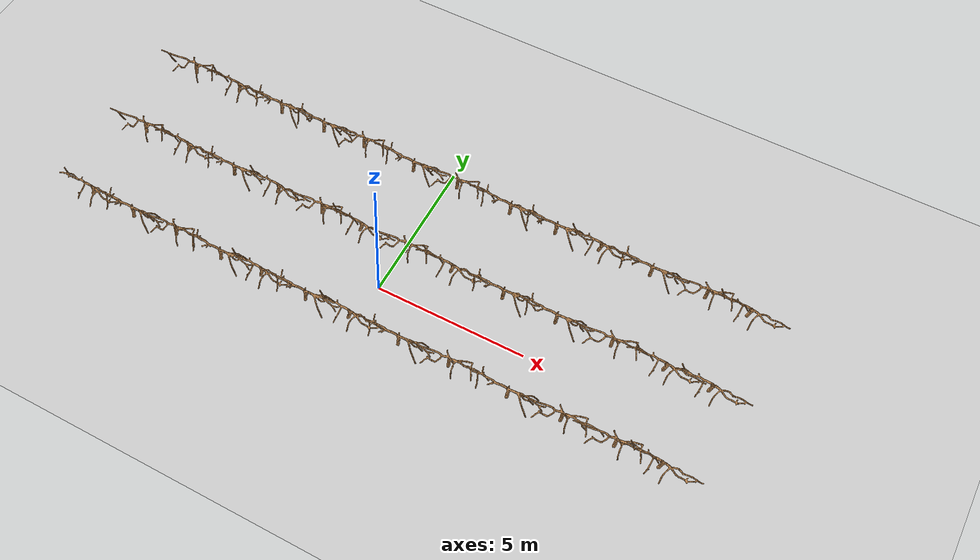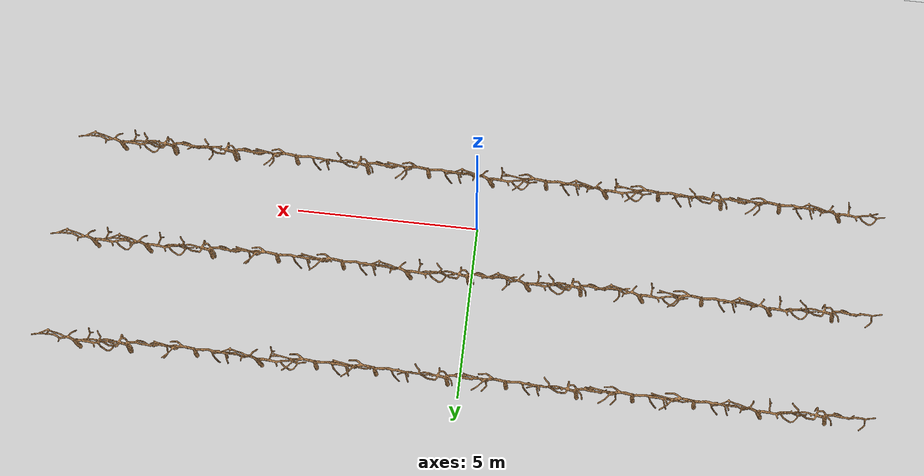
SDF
<sdf version="1.6">
 <world name="default">
  <model name="ground_plane">
   <static>1</static>
   <link name="link">
    <collision name="collision">
     <geometry><plane><normal>0 0 1</normal><size>100 100</size></plane></geometry>
     <surface><friction><ode><mu>100</mu><mu2>50</mu2></ode></friction></surface>
    </collision>
    <visual name="visual">
     <cast_shadows>0</cast_shadows>
     <geometry><plane><normal>0 0 1</normal><size>100 100</size></plane></geometry>
     <material>
      <script><uri>file://media/materials/scripts/gazebo.material</uri><name>Gazebo/Grey</name></script>
     </material>
    </visual>
   </link>
  </model>
  <light name="sun" type="directional">
   <pose>0 0 10 0 -0 0</pose>
   <diffuse>0.8 0.8 0.8 1</diffuse>
   <specular>0.1 0.1 0.1 1</specular>
   <attenuation>
    <range>1000</range>
    <constant>0.9</constant>
    <linear>0.01</linear>
    <quadratic>0.001</quadratic>
   </attenuation>
   <direction>-0.5 0.5 -1</direction>
  </light>
  <physics name="default_physics" default="0" type="ode">
   <ode>
    <solver>
     <type>quick</type>
     <iters>1000</iters>
     <sor>1.3</sor>
     <use_dynamic_moi_rescaling>0</use_dynamic_moi_rescaling>
    </solver>
    <constraints>
     <cfm>0</cfm>
     <erp>0.2</erp>
     <contact_max_correcting_vel>100</contact_max_correcting_vel>
     <contact_surface_layer>0.001</contact_surface_layer>
    </constraints>
   </ode>
   <max_step_size>0.01</max_step_size>
   <real_time_factor>1</real_time_factor>
   <real_time_update_rate>100</real_time_update_rate>
  </physics>
  <gravity>0 0 -9.8</gravity>
  <magnetic_field>6e-06 2.3e-05 -4.2e-05</magnetic_field>
  <atmosphere type="adiabatic"/>
  <scene><ambient>0.4 0.4 0.4 1</ambient><background>0.7 0.7 0.7 1</background><shadows>1</shadows></scene>
  <spherical_coordinates>
   <surface_model>EARTH_WGS84</surface_model>
   <latitude_deg>0</latitude_deg>
   <longitude_deg>0</longitude_deg>
   <elevation>0</elevation>
   <heading_deg>0</heading_deg>
  </spherical_coordinates>
  <audio><device>default</device></audio>
  <model name="vine">
   <static>1</static>
   <link name="link">
    <collision name="collision">
     <geometry>
      <mesh><uri>model://Vine1/meshes/mega_cloud3_processed.stl</uri><scale>1 1 1</scale></mesh>
     </geometry>
     <surface><friction><ode><mu>100</mu><mu2>50</mu2></ode></friction></surface>
    </collision>
    <visual name="visual">
     <geometry>
      <mesh><uri>model://Vine1/meshes/mega_cloud3_processed.stl</uri><scale>1 1 1</scale></mesh>
     </geometry>
     <material>
      <script><uri>file://media/materials/scripts/gazebo.material</uri><name>Gazebo/Wood</name></script>
     </material>
    </visual>
   </link>
   <pose>0 0.5 0 0 -0 1.5708</pose>
  </model>
  <model name="vine_clone">
   <static>1</static>
   <link name="link">
    <collision name="collision">
     <geometry>
      <mesh><uri>model://Vine1/meshes/mega_cloud3_processed.stl</uri><scale>1 1 1</scale></mesh>
     </geometry>
     <surface><friction><ode><mu>100</mu><mu2>50</mu2></ode></friction></surface>
    </collision>
    <visual name="visual">
     <geometry>
      <mesh><uri>model://Vine1/meshes/mega_cloud3_processed.stl</uri><scale>1 1 1</scale></mesh>
     </geometry>
     <material>
      <script><uri>file://media/materials/scripts/gazebo.material</uri><name>Gazebo/Wood</name></script>
     </material>
    </visual>
   </link>
   <pose>-10 0.5 0 0 -0 1.5708</pose>
  </model>
  <model name="vine_0_clone">
   <static>1</static>
   <link name="link">
    <collision name="collision">
     <geometry>
      <mesh><uri>model://Vine3/meshes/mega_cloud7_processed.stl</uri><scale>1 1 1</scale></mesh>
     </geometry>
     <surface><friction><ode><mu>100</mu><mu2>50</mu2></ode></friction></surface>
    </collision>
    <visual name="visual">
     <geometry>
      <mesh><uri>model://Vine3/meshes/mega_cloud7_processed.stl</uri><scale>1 1 1</scale></mesh>
     </geometry>
     <material>
      <script><uri>file://media/materials/scripts/gazebo.material</uri><name>Gazebo/Wood</name></script>
     </material>
    </visual>
   </link>
   <pose>-8.30142 0.5 0 0 -0 1.5708</pose>
  </model>
  <model name="vine_0_clone_0">
   <static>1</static>
   <link name="link">
    <collision name="collision">
     <geometry>
      <mesh><uri>model://Vine3/meshes/mega_cloud7_processed.stl</uri><scale>1 1 1</scale></mesh>
     </geometry>
     <surface><friction><ode><mu>100</mu><mu2>50</mu2></ode></friction></surface>
    </collision>
    <visual name="visual">
     <geometry>
      <mesh><uri>model://Vine3/meshes/mega_cloud7_processed.stl</uri><scale>1 1 1</scale></mesh>
     </geometry>
     <material>
      <script><uri>file://media/materials/scripts/gazebo.material</uri><name>Gazebo/Wood</name></script>
     </material>
    </visual>
   </link>
   <pose>-4.7813 0.5 0 0 -0 1.5708</pose>
  </model>
  <model name="vine_1_clone">
   <static>1</static>
   <link name="link">
    <collision name="collision">
     <geometry>
      <mesh><uri>model://Vine1/meshes/mega_cloud3_processed.stl</uri><scale>1 1 1</scale></mesh>
     </geometry>
     <surface><friction><ode><mu>100</mu><mu2>50</mu2></ode></friction></surface>
    </collision>
    <visual name="visual">
     <geometry>
      <mesh><uri>model://Vine1/meshes/mega_cloud3_processed.stl</uri><scale>1 1 1</scale></mesh>
     </geometry>
     <material>
      <script><uri>file://media/materials/scripts/gazebo.material</uri><name>Gazebo/Wood</name></script>
     </material>
    </visual>
   </link>
   <pose>-3.09224 0.5 0 0 -0 1.5708</pose>
  </model>
  <model name="vine_0_clone_1">
   <static>1</static>
   <link name="link">
    <collision name="collision">
     <geometry>
      <mesh><uri>model://Vine3/meshes/mega_cloud7_processed.stl</uri><scale>1 1 1</scale></mesh>
     </geometry>
     <surface><friction><ode><mu>100</mu><mu2>50</mu2></ode></friction></surface>
    </collision>
    <visual name="visual">
     <geometry>
      <mesh><uri>model://Vine3/meshes/mega_cloud7_processed.stl</uri><scale>1 1 1</scale></mesh>
     </geometry>
     <material>
      <script><uri>file://media/materials/scripts/gazebo.material</uri><name>Gazebo/Wood</name></script>
     </material>
    </visual>
   </link>
   <pose>-1.65994 0.5 0 0 -0 1.5708</pose>
  </model>
  <model name="vine_0_clone_2">
   <static>1</static>
   <link name="link">
    <collision name="collision">
     <geometry>
      <mesh><uri>model://Vine3/meshes/mega_cloud7_processed.stl</uri><scale>1 1 1</scale></mesh>
     </geometry>
     <surface><friction><ode><mu>100</mu><mu2>50</mu2></ode></friction></surface>
    </collision>
    <visual name="visual">
     <geometry>
      <mesh><uri>model://Vine3/meshes/mega_cloud7_processed.stl</uri><scale>1 1 1</scale></mesh>
     </geometry>
     <material>
      <script><uri>file://media/materials/scripts/gazebo.material</uri><name>Gazebo/Wood</name></script>
     </material>
    </visual>
   </link>
   <pose>1.62613 0.5 0 0 -0 1.5708</pose>
  </model>
  <model name="vine_2_clone_0">
   <static>1</static>
   <link name="link">
    <collision name="collision">
     <geometry>
      <mesh><uri>model://Vine2/meshes/mega_cloud16_processed.stl</uri><scale>1 1 1</scale></mesh>
     </geometry>
     <surface><friction><ode><mu>100</mu><mu2>50</mu2></ode></friction></surface>
    </collision>
    <visual name="visual">
     <geometry>
      <mesh><uri>model://Vine2/meshes/mega_cloud16_processed.stl</uri><scale>1 1 1</scale></mesh>
     </geometry>
     <material>
      <script><uri>file://media/materials/scripts/gazebo.material</uri><name>Gazebo/Wood</name></script>
     </material>
    </visual>
   </link>
   <pose>3.39102 0.5 0 0 -0 1.5708</pose>
  </model>
  <model name="vine_2_clone_0_clone">
   <static>1</static>
   <link name="link">
    <collision name="collision">
     <geometry>
      <mesh><uri>model://Vine2/meshes/mega_cloud16_processed.stl</uri><scale>1 1 1</scale></mesh>
     </geometry>
     <surface><friction><ode><mu>100</mu><mu2>50</mu2></ode></friction></surface>
    </collision>
    <visual name="visual">
     <geometry>
      <mesh><uri>model://Vine2/meshes/mega_cloud16_processed.stl</uri><scale>1 1 1</scale></mesh>
     </geometry>
     <material>
      <script><uri>file://media/materials/scripts/gazebo.material</uri><name>Gazebo/Wood</name></script>
     </material>
    </visual>
   </link>
   <pose>5.20809 0.5 0 0 -0 1.5708</pose>
  </model>
  <model name="vine_1_clone_0">
   <static>1</static>
   <link name="link">
    <collision name="collision">
     <geometry>
      <mesh><uri>model://Vine1/meshes/mega_cloud3_processed.stl</uri><scale>1 1 1</scale></mesh>
     </geometry>
     <surface><friction><ode><mu>100</mu><mu2>50</mu2></ode></friction></surface>
    </collision>
    <visual name="visual">
     <geometry>
      <mesh><uri>model://Vine1/meshes/mega_cloud3_processed.stl</uri><scale>1 1 1</scale></mesh>
     </geometry>
     <material>
      <script><uri>file://media/materials/scripts/gazebo.material</uri><name>Gazebo/Wood</name></script>
     </material>
    </visual>
   </link>
   <pose>7.1189 0.5 0 0 -0 1.5708</pose>
  </model>
  <model name="vine_0_clone_3">
   <static>1</static>
   <link name="link">
    <collision name="collision">
     <geometry>
      <mesh><uri>model://Vine3/meshes/mega_cloud7_processed.stl</uri><scale>1 1 1</scale></mesh>
     </geometry>
     <surface><friction><ode><mu>100</mu><mu2>50</mu2></ode></friction></surface>
    </collision>
    <visual name="visual">
     <geometry>
      <mesh><uri>model://Vine3/meshes/mega_cloud7_processed.stl</uri><scale>1 1 1</scale></mesh>
     </geometry>
     <material>
      <script><uri>file://media/materials/scripts/gazebo.material</uri><name>Gazebo/Wood</name></script>
     </material>
    </visual>
   </link>
   <pose>8.84404 0.5 0 0 -0 1.5708</pose>
  </model>
  <model name="vine_0_clone_4">
   <static>1</static>
   <link name="link">
    <collision name="collision">
     <geometry>
      <mesh><uri>model://Vine3/meshes/mega_cloud7_processed.stl</uri><scale>1 1 1</scale></mesh>
     </geometry>
     <surface><friction><ode><mu>100</mu><mu2>50</mu2></ode></friction></surface>
    </collision>
    <visual name="visual">
     <geometry>
      <mesh><uri>model://Vine3/meshes/mega_cloud7_processed.stl</uri><scale>1 1 1</scale></mesh>
     </geometry>
     <material>
      <script><uri>file://media/materials/scripts/gazebo.material</uri><name>Gazebo/Wood</name></script>
     </material>
    </visual>
   </link>
   <pose>10.3032 0.5 0 0 -0 1.5708</pose>
  </model>
  <model name="vine_2_clone_clone">
   <static>1</static>
   <link name="link">
    <collision name="collision">
     <geometry>
      <mesh><uri>model://Vine2/meshes/mega_cloud16_processed.stl</uri><scale>1 1 1</scale></mesh>
     </geometry>
     <surface><friction><ode><mu>100</mu><mu2>50</mu2></ode></friction></surface>
    </collision>
    <visual name="visual">
     <geometry>
      <mesh><uri>model://Vine2/meshes/mega_cloud16_processed.stl</uri><scale>1 1 1</scale></mesh>
     </geometry>
     <material>
      <script><uri>file://media/materials/scripts/gazebo.material</uri><name>Gazebo/Wood</name></script>
     </material>
    </visual>
   </link>
   <pose>-6.5 0.5 0 0 -0 1.5708</pose>
  </model>
  <model name="vine_2_clone">
   <static>1</static>
   <link name="link">
    <collision name="collision">
     <geometry>
      <mesh><uri>model://Vine3/meshes/mega_cloud7_processed.stl</uri><scale>1 1 1</scale></mesh>
     </geometry>
     <surface><friction><ode><mu>100</mu><mu2>50</mu2></ode></friction></surface>
    </collision>
    <visual name="visual">
     <geometry>
      <mesh><uri>model://Vine3/meshes/mega_cloud7_processed.stl</uri><scale>1 1 1</scale></mesh>
     </geometry>
     <material>
      <script><uri>file://media/materials/scripts/gazebo.material</uri><name>Gazebo/Wood</name></script>
     </material>
    </visual>
   </link>
   <pose>-10 -2.5 0 0 -0 1.5708</pose>
  </model>
  <model name="vine_1_clone_1">
   <static>1</static>
   <link name="link">
    <collision name="collision">
     <geometry>
      <mesh><uri>model://Vine2/meshes/mega_cloud16_processed.stl</uri><scale>1 1 1</scale></mesh>
     </geometry>
     <surface><friction><ode><mu>100</mu><mu2>50</mu2></ode></friction></surface>
    </collision>
    <visual name="visual">
     <geometry>
      <mesh><uri>model://Vine2/meshes/mega_cloud16_processed.stl</uri><scale>1 1 1</scale></mesh>
     </geometry>
     <material>
      <script><uri>file://media/materials/scripts/gazebo.material</uri><name>Gazebo/Wood</name></script>
     </material>
    </visual>
   </link>
   <pose>-8.41171 -2.5 0 0 -0 1.5708</pose>
  </model>
  <model name="vine_0_clone_5">
   <static>1</static>
   <link name="link">
    <collision name="collision">
     <geometry>
      <mesh><uri>model://Vine1/meshes/mega_cloud3_processed.stl</uri><scale>1 1 1</scale></mesh>
     </geometry>
     <surface><friction><ode><mu>100</mu><mu2>50</mu2></ode></friction></surface>
    </collision>
    <visual name="visual">
     <geometry>
      <mesh><uri>model://Vine1/meshes/mega_cloud3_processed.stl</uri><scale>1 1 1</scale></mesh>
     </geometry>
     <material>
      <script><uri>file://media/materials/scripts/gazebo.material</uri><name>Gazebo/Wood</name></script>
     </material>
    </visual>
   </link>
   <pose>-6.71498 -2.5 0 0 -0 1.5708</pose>
  </model>
  <model name="vine_1_clone_2">
   <static>1</static>
   <link name="link">
    <collision name="collision">
     <geometry>
      <mesh><uri>model://Vine2/meshes/mega_cloud16_processed.stl</uri><scale>1 1 1</scale></mesh>
     </geometry>
     <surface><friction><ode><mu>100</mu><mu2>50</mu2></ode></friction></surface>
    </collision>
    <visual name="visual">
     <geometry>
      <mesh><uri>model://Vine2/meshes/mega_cloud16_processed.stl</uri><scale>1 1 1</scale></mesh>
     </geometry>
     <material>
      <script><uri>file://media/materials/scripts/gazebo.material</uri><name>Gazebo/Wood</name></script>
     </material>
    </visual>
   </link>
   <pose>-5.0501 -2.5 0 0 -0 1.5708</pose>
  </model>
  <model name="vine_2_clone_1_clone">
   <static>1</static>
   <link name="link">
    <collision name="collision">
     <geometry>
      <mesh><uri>model://Vine3/meshes/mega_cloud7_processed.stl</uri><scale>1 1 1</scale></mesh>
     </geometry>
     <surface><friction><ode><mu>100</mu><mu2>50</mu2></ode></friction></surface>
    </collision>
    <visual name="visual">
     <geometry>
      <mesh><uri>model://Vine3/meshes/mega_cloud7_processed.stl</uri><scale>1 1 1</scale></mesh>
     </geometry>
     <material>
      <script><uri>file://media/materials/scripts/gazebo.material</uri><name>Gazebo/Wood</name></script>
     </material>
    </visual>
   </link>
   <pose>-3.51784 -2.5 0 0 -0 1.5708</pose>
  </model>
  <model name="vine_1_clone_3">
   <static>1</static>
   <link name="link">
    <collision name="collision">
     <geometry>
      <mesh><uri>model://Vine2/meshes/mega_cloud16_processed.stl</uri><scale>1 1 1</scale></mesh>
     </geometry>
     <surface><friction><ode><mu>100</mu><mu2>50</mu2></ode></friction></surface>
    </collision>
    <visual name="visual">
     <geometry>
      <mesh><uri>model://Vine2/meshes/mega_cloud16_processed.stl</uri><scale>1 1 1</scale></mesh>
     </geometry>
     <material>
      <script><uri>file://media/materials/scripts/gazebo.material</uri><name>Gazebo/Wood</name></script>
     </material>
    </visual>
   </link>
   <pose>-1.91987 -2.5 0 0 -0 1.5708</pose>
  </model>
  <model name="vine_2_clone_1_clone_0">
   <static>1</static>
   <link name="link">
    <collision name="collision">
     <geometry>
      <mesh><uri>model://Vine3/meshes/mega_cloud7_processed.stl</uri><scale>1 1 1</scale></mesh>
     </geometry>
     <surface><friction><ode><mu>100</mu><mu2>50</mu2></ode></friction></surface>
    </collision>
    <visual name="visual">
     <geometry>
      <mesh><uri>model://Vine3/meshes/mega_cloud7_processed.stl</uri><scale>1 1 1</scale></mesh>
     </geometry>
     <material>
      <script><uri>file://media/materials/scripts/gazebo.material</uri><name>Gazebo/Wood</name></script>
     </material>
    </visual>
   </link>
   <pose>-0.332514 -2.5 0 0 -0 1.5708</pose>
  </model>
  <model name="vine_1_clone_4">
   <static>1</static>
   <link name="link">
    <collision name="collision">
     <geometry>
      <mesh><uri>model://Vine2/meshes/mega_cloud16_processed.stl</uri><scale>1 1 1</scale></mesh>
     </geometry>
     <surface><friction><ode><mu>100</mu><mu2>50</mu2></ode></friction></surface>
    </collision>
    <visual name="visual">
     <geometry>
      <mesh><uri>model://Vine2/meshes/mega_cloud16_processed.stl</uri><scale>1 1 1</scale></mesh>
     </geometry>
     <material>
      <script><uri>file://media/materials/scripts/gazebo.material</uri><name>Gazebo/Wood</name></script>
     </material>
    </visual>
   </link>
   <pose>1.36895 -2.5 0 0 -0 1.5708</pose>
  </model>
  <model name="vine_0_clone_6">
   <static>1</static>
   <link name="link">
    <collision name="collision">
     <geometry>
      <mesh><uri>model://Vine1/meshes/mega_cloud3_processed.stl</uri><scale>1 1 1</scale></mesh>
     </geometry>
     <surface><friction><ode><mu>100</mu><mu2>50</mu2></ode></friction></surface>
    </collision>
    <visual name="visual">
     <geometry>
      <mesh><uri>model://Vine1/meshes/mega_cloud3_processed.stl</uri><scale>1 1 1</scale></mesh>
     </geometry>
     <material>
      <script><uri>file://media/materials/scripts/gazebo.material</uri><name>Gazebo/Wood</name></script>
     </material>
    </visual>
   </link>
   <pose>3.14199 -2.5 0 0 -0 1.5708</pose>
  </model>
  <model name="vine_1_clone_5">
   <static>1</static>
   <link name="link">
    <collision name="collision">
     <geometry>
      <mesh><uri>model://Vine2/meshes/mega_cloud16_processed.stl</uri><scale>1 1 1</scale></mesh>
     </geometry>
     <surface><friction><ode><mu>100</mu><mu2>50</mu2></ode></friction></surface>
    </collision>
    <visual name="visual">
     <geometry>
      <mesh><uri>model://Vine2/meshes/mega_cloud16_processed.stl</uri><scale>1 1 1</scale></mesh>
     </geometry>
     <material>
      <script><uri>file://media/materials/scripts/gazebo.material</uri><name>Gazebo/Wood</name></script>
     </material>
    </visual>
   </link>
   <pose>5.05755 -2.5 0 0 -0 1.5708</pose>
  </model>
  <model name="vine_0_clone_7">
   <static>1</static>
   <link name="link">
    <collision name="collision">
     <geometry>
      <mesh><uri>model://Vine1/meshes/mega_cloud3_processed.stl</uri><scale>1 1 1</scale></mesh>
     </geometry>
     <surface><friction><ode><mu>100</mu><mu2>50</mu2></ode></friction></surface>
    </collision>
    <visual name="visual">
     <geometry>
      <mesh><uri>model://Vine1/meshes/mega_cloud3_processed.stl</uri><scale>1 1 1</scale></mesh>
     </geometry>
     <material>
      <script><uri>file://media/materials/scripts/gazebo.material</uri><name>Gazebo/Wood</name></script>
     </material>
    </visual>
   </link>
   <pose>6.86928 -2.5 0 0 -0 1.5708</pose>
  </model>
  <model name="vine_0_clone_8">
   <static>1</static>
   <link name="link">
    <collision name="collision">
     <geometry>
      <mesh><uri>model://Vine1/meshes/mega_cloud3_processed.stl</uri><scale>1 1 1</scale></mesh>
     </geometry>
     <surface><friction><ode><mu>100</mu><mu2>50</mu2></ode></friction></surface>
    </collision>
    <visual name="visual">
     <geometry>
      <mesh><uri>model://Vine1/meshes/mega_cloud3_processed.stl</uri><scale>1 1 1</scale></mesh>
     </geometry>
     <material>
      <script><uri>file://media/materials/scripts/gazebo.material</uri><name>Gazebo/Wood</name></script>
     </material>
    </visual>
   </link>
   <pose>8.57861 -2.5 0 0 -0 1.5708</pose>
  </model>
  <model name="vine_2_clone_1_clone_1">
   <static>1</static>
   <link name="link">
    <collision name="collision">
     <geometry>
      <mesh><uri>model://Vine3/meshes/mega_cloud7_processed.stl</uri><scale>1 1 1</scale></mesh>
     </geometry>
     <surface><friction><ode><mu>100</mu><mu2>50</mu2></ode></friction></surface>
    </collision>
    <visual name="visual">
     <geometry>
      <mesh><uri>model://Vine3/meshes/mega_cloud7_processed.stl</uri><scale>1 1 1</scale></mesh>
     </geometry>
     <material>
      <script><uri>file://media/materials/scripts/gazebo.material</uri><name>Gazebo/Wood</name></script>
     </material>
    </visual>
   </link>
   <pose>9.98653 -2.5 0 0 -0 1.5708</pose>
  </model>
  <model name="vine_0_clone_10">
   <static>1</static>
   <link name="link">
    <collision name="collision">
     <geometry>
      <mesh><uri>model://Vine1/meshes/mega_cloud3_processed.stl</uri><scale>1 1 1</scale></mesh>
     </geometry>
     <surface><friction><ode><mu>100</mu><mu2>50</mu2></ode></friction></surface>
    </collision>
    <visual name="visual">
     <geometry>
      <mesh><uri>model://Vine1/meshes/mega_cloud3_processed.stl</uri><scale>1 1 1</scale></mesh>
     </geometry>
     <material>
      <script><uri>file://media/materials/scripts/gazebo.material</uri><name>Gazebo/Wood</name></script>
     </material>
    </visual>
   </link>
   <pose>-10 3.5 0 0 -0 1.5708</pose>
  </model>
  <model name="vine_2_clone_1_clone_2">
   <static>1</static>
   <link name="link">
    <collision name="collision">
     <geometry>
      <mesh><uri>model://Vine3/meshes/mega_cloud7_processed.stl</uri><scale>1 1 1</scale></mesh>
     </geometry>
     <surface><friction><ode><mu>100</mu><mu2>50</mu2></ode></friction></surface>
    </collision>
    <visual name="visual">
     <geometry>
      <mesh><uri>model://Vine3/meshes/mega_cloud7_processed.stl</uri><scale>1 1 1</scale></mesh>
     </geometry>
     <material>
      <script><uri>file://media/materials/scripts/gazebo.material</uri><name>Gazebo/Wood</name></script>
     </material>
    </visual>
   </link>
   <pose>-8.24562 3.5 0 0 -0 1.5708</pose>
  </model>
  <model name="vine_1_clone_6">
   <static>1</static>
   <link name="link">
    <collision name="collision">
     <geometry>
      <mesh><uri>model://Vine2/meshes/mega_cloud16_processed.stl</uri><scale>1 1 1</scale></mesh>
     </geometry>
     <surface><friction><ode><mu>100</mu><mu2>50</mu2></ode></friction></surface>
    </collision>
    <visual name="visual">
     <geometry>
      <mesh><uri>model://Vine2/meshes/mega_cloud16_processed.stl</uri><scale>1 1 1</scale></mesh>
     </geometry>
     <material>
      <script><uri>file://media/materials/scripts/gazebo.material</uri><name>Gazebo/Wood</name></script>
     </material>
    </visual>
   </link>
   <pose>-6.53397 3.5 0 0 -0 1.5708</pose>
  </model>
  <model name="vine_1_clone_7">
   <static>1</static>
   <link name="link">
    <collision name="collision">
     <geometry>
      <mesh><uri>model://Vine2/meshes/mega_cloud16_processed.stl</uri><scale>1 1 1</scale></mesh>
     </geometry>
     <surface><friction><ode><mu>100</mu><mu2>50</mu2></ode></friction></surface>
    </collision>
    <visual name="visual">
     <geometry>
      <mesh><uri>model://Vine2/meshes/mega_cloud16_processed.stl</uri><scale>1 1 1</scale></mesh>
     </geometry>
     <material>
      <script><uri>file://media/materials/scripts/gazebo.material</uri><name>Gazebo/Wood</name></script>
     </material>
    </visual>
   </link>
   <pose>-4.86932 3.5 0 0 -0 1.5708</pose>
  </model>
  <model name="vine_0_clone_9_clone">
   <static>1</static>
   <link name="link">
    <collision name="collision">
     <geometry>
      <mesh><uri>model://Vine1/meshes/mega_cloud3_processed.stl</uri><scale>1 1 1</scale></mesh>
     </geometry>
     <surface><friction><ode><mu>100</mu><mu2>50</mu2></ode></friction></surface>
    </collision>
    <visual name="visual">
     <geometry>
      <mesh><uri>model://Vine1/meshes/mega_cloud3_processed.stl</uri><scale>1 1 1</scale></mesh>
     </geometry>
     <material>
      <script><uri>file://media/materials/scripts/gazebo.material</uri><name>Gazebo/Wood</name></script>
     </material>
    </visual>
   </link>
   <pose>-3.2675 3.5 0 0 -0 1.5708</pose>
  </model>
  <model name="vine_1_clone_8">
   <static>1</static>
   <link name="link">
    <collision name="collision">
     <geometry>
      <mesh><uri>model://Vine2/meshes/mega_cloud16_processed.stl</uri><scale>1 1 1</scale></mesh>
     </geometry>
     <surface><friction><ode><mu>100</mu><mu2>50</mu2></ode></friction></surface>
    </collision>
    <visual name="visual">
     <geometry>
      <mesh><uri>model://Vine2/meshes/mega_cloud16_processed.stl</uri><scale>1 1 1</scale></mesh>
     </geometry>
     <material>
      <script><uri>file://media/materials/scripts/gazebo.material</uri><name>Gazebo/Wood</name></script>
     </material>
    </visual>
   </link>
   <pose>-1.42522 3.5 0 0 -0 1.5708</pose>
  </model>
  <model name="vine_0_clone_9_clone_0">
   <static>1</static>
   <link name="link">
    <collision name="collision">
     <geometry>
      <mesh><uri>model://Vine1/meshes/mega_cloud3_processed.stl</uri><scale>1 1 1</scale></mesh>
     </geometry>
     <surface><friction><ode><mu>100</mu><mu2>50</mu2></ode></friction></surface>
    </collision>
    <visual name="visual">
     <geometry>
      <mesh><uri>model://Vine1/meshes/mega_cloud3_processed.stl</uri><scale>1 1 1</scale></mesh>
     </geometry>
     <material>
      <script><uri>file://media/materials/scripts/gazebo.material</uri><name>Gazebo/Wood</name></script>
     </material>
    </visual>
   </link>
   <pose>0.251416 3.5 0 0 -0 1.5708</pose>
  </model>
  <model name="vine_1_clone_9">
   <static>1</static>
   <link name="link">
    <collision name="collision">
     <geometry>
      <mesh><uri>model://Vine2/meshes/mega_cloud16_processed.stl</uri><scale>1 1 1</scale></mesh>
     </geometry>
     <surface><friction><ode><mu>100</mu><mu2>50</mu2></ode></friction></surface>
    </collision>
    <visual name="visual">
     <geometry>
      <mesh><uri>model://Vine2/meshes/mega_cloud16_processed.stl</uri><scale>1 1 1</scale></mesh>
     </geometry>
     <material>
      <script><uri>file://media/materials/scripts/gazebo.material</uri><name>Gazebo/Wood</name></script>
     </material>
    </visual>
   </link>
   <pose>2.13262 3.5 0 0 -0 1.5708</pose>
  </model>
  <model name="vine_1_clone_10">
   <static>1</static>
   <link name="link">
    <collision name="collision">
     <geometry>
      <mesh><uri>model://Vine2/meshes/mega_cloud16_processed.stl</uri><scale>1 1 1</scale></mesh>
     </geometry>
     <surface><friction><ode><mu>100</mu><mu2>50</mu2></ode></friction></surface>
    </collision>
    <visual name="visual">
     <geometry>
      <mesh><uri>model://Vine2/meshes/mega_cloud16_processed.stl</uri><scale>1 1 1</scale></mesh>
     </geometry>
     <material>
      <script><uri>file://media/materials/scripts/gazebo.material</uri><name>Gazebo/Wood</name></script>
     </material>
    </visual>
   </link>
   <pose>3.76004 3.5 0 0 -0 1.5708</pose>
  </model>
  <model name="vine_2_clone_1_clone_3">
   <static>1</static>
   <link name="link">
    <collision name="collision">
     <geometry>
      <mesh><uri>model://Vine3/meshes/mega_cloud7_processed.stl</uri><scale>1 1 1</scale></mesh>
     </geometry>
     <surface><friction><ode><mu>100</mu><mu2>50</mu2></ode></friction></surface>
    </collision>
    <visual name="visual">
     <geometry>
      <mesh><uri>model://Vine3/meshes/mega_cloud7_processed.stl</uri><scale>1 1 1</scale></mesh>
     </geometry>
     <material>
      <script><uri>file://media/materials/scripts/gazebo.material</uri><name>Gazebo/Wood</name></script>
     </material>
    </visual>
   </link>
   <pose>5.34791 3.5 0 0 -0 1.5708</pose>
  </model>
  <model name="vine_1_clone_11">
   <static>1</static>
   <link name="link">
    <collision name="collision">
     <geometry>
      <mesh><uri>model://Vine2/meshes/mega_cloud16_processed.stl</uri><scale>1 1 1</scale></mesh>
     </geometry>
     <surface><friction><ode><mu>100</mu><mu2>50</mu2></ode></friction></surface>
    </collision>
    <visual name="visual">
     <geometry>
      <mesh><uri>model://Vine2/meshes/mega_cloud16_processed.stl</uri><scale>1 1 1</scale></mesh>
     </geometry>
     <material>
      <script><uri>file://media/materials/scripts/gazebo.material</uri><name>Gazebo/Wood</name></script>
     </material>
    </visual>
   </link>
   <pose>7.05055 3.5 0 0 -0 1.5708</pose>
  </model>
  <model name="vine_0_clone_9_clone_1">
   <static>1</static>
   <link name="link">
    <collision name="collision">
     <geometry>
      <mesh><uri>model://Vine1/meshes/mega_cloud3_processed.stl</uri><scale>1 1 1</scale></mesh>
     </geometry>
     <surface><friction><ode><mu>100</mu><mu2>50</mu2></ode></friction></surface>
    </collision>
    <visual name="visual">
     <geometry>
      <mesh><uri>model://Vine1/meshes/mega_cloud3_processed.stl</uri><scale>1 1 1</scale></mesh>
     </geometry>
     <material>
      <script><uri>file://media/materials/scripts/gazebo.material</uri><name>Gazebo/Wood</name></script>
     </material>
    </visual>
   </link>
   <pose>8.96232 3.5 0 0 -0 1.5708</pose>
  </model>
  <model name="vine_2_clone_1_clone_4">
   <static>1</static>
   <link name="link">
    <collision name="collision">
     <geometry>
      <mesh><uri>model://Vine3/meshes/mega_cloud7_processed.stl</uri><scale>1 1 1</scale></mesh>
     </geometry>
     <surface><friction><ode><mu>100</mu><mu2>50</mu2></ode></friction></surface>
    </collision>
    <visual name="visual">
     <geometry>
      <mesh><uri>model://Vine3/meshes/mega_cloud7_processed.stl</uri><scale>1 1 1</scale></mesh>
     </geometry>
     <material>
      <script><uri>file://media/materials/scripts/gazebo.material</uri><name>Gazebo/Wood</name></script>
     </material>
    </visual>
   </link>
   <pose>10.3513 3.5 0 0 -0 1.5708</pose>
  </model>
 </world>
</sdf>
